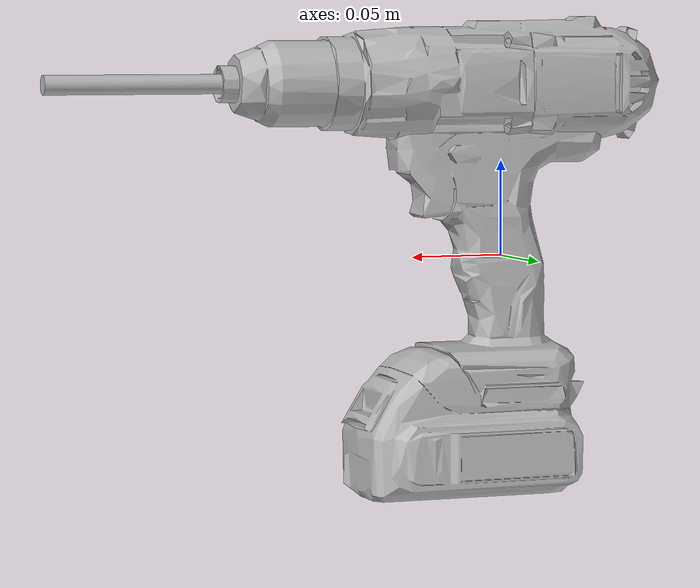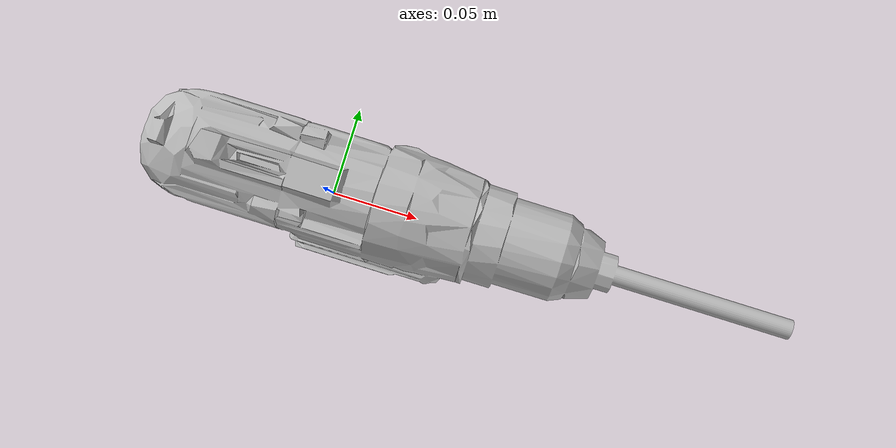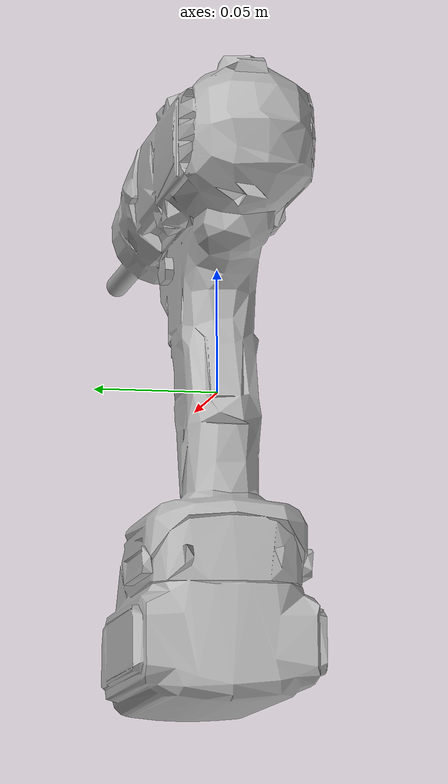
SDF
<?xml version="1.0" ?>
<sdf version='1.4'>
  <model name='dewalt_dcd980m2'>
    <link name="link">
        <inertial>
            <pose>0.020205 -0.000018 0.002690 0 0 0</pose>
            <inertia>
                <ixx> 0.0931074</ixx>
                <ixy> 0.0000011</ixy>
                <ixz>-0.0018660</ixz>
                <iyy> 0.1167662</iyy>
                <iyz>-0.0000221</iyz>
                <izz> 0.0296421</izz>
            </inertia>
            <mass>2.4</mass>
        </inertial>
        <collision name="collision">
            <pose>0 0 0 0 0 0</pose>
            <geometry>
                <mesh>
                    <uri>file://dewalt_DCD980M2/meshes/dewalt_dcd980m2.stl</uri>
                </mesh>
            </geometry>
            <surface>
                <contact>
                    <ode>
                        <max_vel>0.1</max_vel>
                        <min_depth>0.001</min_depth>
                    </ode>
                </contact>
            </surface>
        </collision>
        <visual name="visual">
            <pose>0 0 0 0 0 0</pose>
            <geometry>
                <mesh>
                    <uri>file://dewalt_DCD980M2/meshes/dewalt_dcd980m2.stl</uri>
                </mesh>
            </geometry>
        </visual>
    </link>
  </model>
</sdf>
